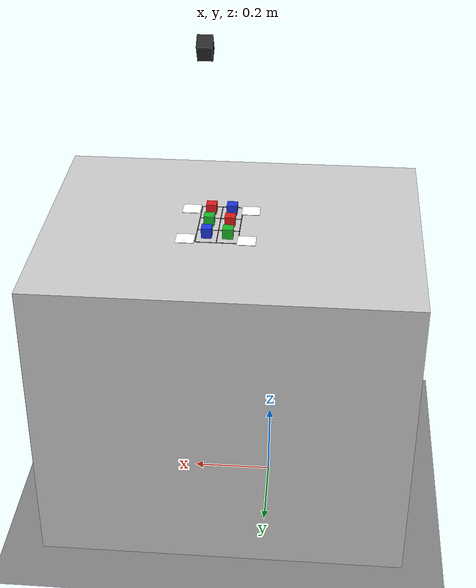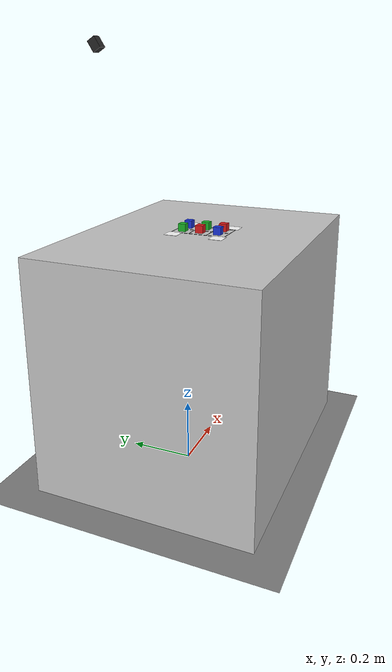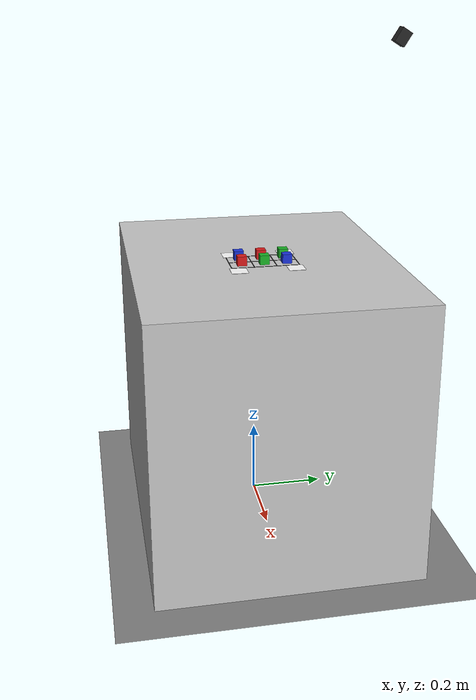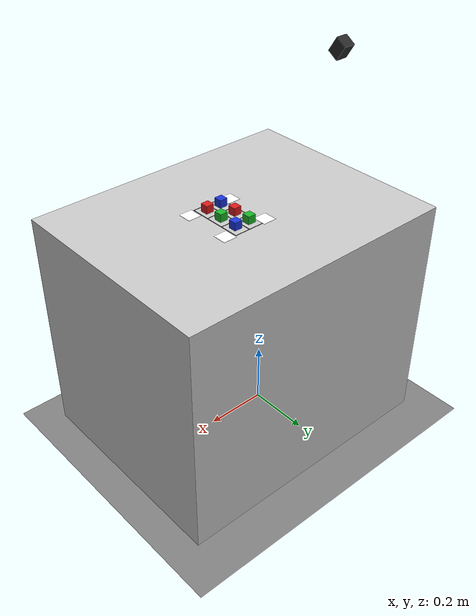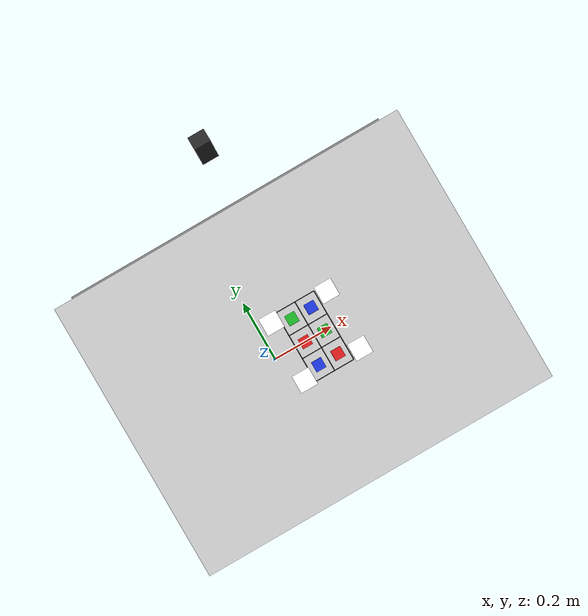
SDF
<?xml version="1.0"?>
<sdf version="1.8">
  <world name="sort_world">
    <physics name="default" type="ignored">
      <max_step_size>0.004</max_step_size>
      <real_time_factor>1.0</real_time_factor>
    </physics>
    <plugin filename="libignition-gazebo-physics-system.so" name="ignition::gazebo::systems::Physics"/>
    <plugin filename="libignition-gazebo-scene-broadcaster-system.so" name="ignition::gazebo::systems::SceneBroadcaster"/>
    <plugin filename="libignition-gazebo-user-commands-system.so" name="ignition::gazebo::systems::UserCommands"/>
    <plugin filename="libignition-gazebo-sensors-system.so" name="ignition::gazebo::systems::Sensors">
      <render_engine>ogre2</render_engine>
    </plugin>
    <scene><ambient>0.55 0.55 0.55 1</ambient><background>0.72 0.72 0.72 1</background><shadows>false</shadows></scene>
    <light type="directional" name="sun">
      <cast_shadows>false</cast_shadows>
      <pose>0 0 10 0 0 0</pose>
      <diffuse>0.8 0.8 0.8 1</diffuse>
      <specular>0.1 0.1 0.1 1</specular>
      <direction>-0.1 0.1 -0.98</direction>
    </light>

    <model name="ground">
      <static>true</static>
      <link name="ground_link">
        <collision name="c"><geometry><plane><normal>0 0 1</normal><size>10 10</size></plane></geometry></collision>
        <visual name="v"><geometry><plane><normal>0 0 1</normal><size>10 10</size></plane></geometry><material><ambient>0.5 0.5 0.5 1</ambient><diffuse>0.5 0.5 0.5 1</diffuse></material></visual>
      </link>
    </model>

    <!-- 桌子：灰色实心块，桌面高 0.75 m，机器人生成在桌面 (0,0,0.75) -->
    <model name="table">
      <static>true</static>
      <pose>0.1 0 0.375 0 0 0</pose>
      <link name="table_link">
        <collision name="table_c"><pose>0 0 0 0 0 0</pose><geometry><box><size>0.9 0.7 0.75</size></box></geometry><surface><friction><ode><mu>1.0</mu><mu2>1.0</mu2></ode></friction></surface></collision><visual name="table"><pose>0 0 0 0 0 0</pose><geometry><box><size>0.9 0.7 0.75</size></box></geometry><material><ambient>0.78 0.78 0.78 1</ambient><diffuse>0.78 0.78 0.78 1</diffuse></material></visual>
      </link>
    </model>
    <!-- 取物网格描边（3×2 连成一片，坐标同 grid.yaml） -->
    <model name="grid_marks"><static>true</static><link name="l">
      <visual name="cell1_l0"><pose>0.105 0.09 0.7503 0 0 0</pose><geometry><box><size>0.05 0.002 0.0006</size></box></geometry><material><ambient>0.12 0.12 0.12 1</ambient><diffuse>0.12 0.12 0.12 1</diffuse></material></visual>
      <visual name="cell1_l1"><pose>0.105 0.03 0.7503 0 0 0</pose><geometry><box><size>0.05 0.002 0.0006</size></box></geometry><material><ambient>0.12 0.12 0.12 1</ambient><diffuse>0.12 0.12 0.12 1</diffuse></material></visual>
      <visual name="cell1_l2"><pose>0.13 0.06 0.7503 0 0 0</pose><geometry><box><size>0.002 0.06 0.0006</size></box></geometry><material><ambient>0.12 0.12 0.12 1</ambient><diffuse>0.12 0.12 0.12 1</diffuse></material></visual>
      <visual name="cell1_l3"><pose>0.07999999999999999 0.06 0.7503 0 0 0</pose><geometry><box><size>0.002 0.06 0.0006</size></box></geometry><material><ambient>0.12 0.12 0.12 1</ambient><diffuse>0.12 0.12 0.12 1</diffuse></material></visual>
      <visual name="cell2_l0"><pose>0.105 0.03 0.7503 0 0 0</pose><geometry><box><size>0.05 0.002 0.0006</size></box></geometry><material><ambient>0.12 0.12 0.12 1</ambient><diffuse>0.12 0.12 0.12 1</diffuse></material></visual>
      <visual name="cell2_l1"><pose>0.105 -0.03 0.7503 0 0 0</pose><geometry><box><size>0.05 0.002 0.0006</size></box></geometry><material><ambient>0.12 0.12 0.12 1</ambient><diffuse>0.12 0.12 0.12 1</diffuse></material></visual>
      <visual name="cell2_l2"><pose>0.13 0.0 0.7503 0 0 0</pose><geometry><box><size>0.002 0.06 0.0006</size></box></geometry><material><ambient>0.12 0.12 0.12 1</ambient><diffuse>0.12 0.12 0.12 1</diffuse></material></visual>
      <visual name="cell2_l3"><pose>0.07999999999999999 0.0 0.7503 0 0 0</pose><geometry><box><size>0.002 0.06 0.0006</size></box></geometry><material><ambient>0.12 0.12 0.12 1</ambient><diffuse>0.12 0.12 0.12 1</diffuse></material></visual>
      <visual name="cell3_l0"><pose>0.105 -0.03 0.7503 0 0 0</pose><geometry><box><size>0.05 0.002 0.0006</size></box></geometry><material><ambient>0.12 0.12 0.12 1</ambient><diffuse>0.12 0.12 0.12 1</diffuse></material></visual>
      <visual name="cell3_l1"><pose>0.105 -0.09 0.7503 0 0 0</pose><geometry><box><size>0.05 0.002 0.0006</size></box></geometry><material><ambient>0.12 0.12 0.12 1</ambient><diffuse>0.12 0.12 0.12 1</diffuse></material></visual>
      <visual name="cell3_l2"><pose>0.13 -0.06 0.7503 0 0 0</pose><geometry><box><size>0.002 0.06 0.0006</size></box></geometry><material><ambient>0.12 0.12 0.12 1</ambient><diffuse>0.12 0.12 0.12 1</diffuse></material></visual>
      <visual name="cell3_l3"><pose>0.07999999999999999 -0.06 0.7503 0 0 0</pose><geometry><box><size>0.002 0.06 0.0006</size></box></geometry><material><ambient>0.12 0.12 0.12 1</ambient><diffuse>0.12 0.12 0.12 1</diffuse></material></visual>
      <visual name="cell4_l0"><pose>0.155 0.09 0.7503 0 0 0</pose><geometry><box><size>0.05 0.002 0.0006</size></box></geometry><material><ambient>0.12 0.12 0.12 1</ambient><diffuse>0.12 0.12 0.12 1</diffuse></material></visual>
      <visual name="cell4_l1"><pose>0.155 0.03 0.7503 0 0 0</pose><geometry><box><size>0.05 0.002 0.0006</size></box></geometry><material><ambient>0.12 0.12 0.12 1</ambient><diffuse>0.12 0.12 0.12 1</diffuse></material></visual>
      <visual name="cell4_l2"><pose>0.18 0.06 0.7503 0 0 0</pose><geometry><box><size>0.002 0.06 0.0006</size></box></geometry><material><ambient>0.12 0.12 0.12 1</ambient><diffuse>0.12 0.12 0.12 1</diffuse></material></visual>
      <visual name="cell4_l3"><pose>0.13 0.06 0.7503 0 0 0</pose><geometry><box><size>0.002 0.06 0.0006</size></box></geometry><material><ambient>0.12 0.12 0.12 1</ambient><diffuse>0.12 0.12 0.12 1</diffuse></material></visual>
      <visual name="cell5_l0"><pose>0.155 0.03 0.7503 0 0 0</pose><geometry><box><size>0.05 0.002 0.0006</size></box></geometry><material><ambient>0.12 0.12 0.12 1</ambient><diffuse>0.12 0.12 0.12 1</diffuse></material></visual>
      <visual name="cell5_l1"><pose>0.155 -0.03 0.7503 0 0 0</pose><geometry><box><size>0.05 0.002 0.0006</size></box></geometry><material><ambient>0.12 0.12 0.12 1</ambient><diffuse>0.12 0.12 0.12 1</diffuse></material></visual>
      <visual name="cell5_l2"><pose>0.18 0.0 0.7503 0 0 0</pose><geometry><box><size>0.002 0.06 0.0006</size></box></geometry><material><ambient>0.12 0.12 0.12 1</ambient><diffuse>0.12 0.12 0.12 1</diffuse></material></visual>
      <visual name="cell5_l3"><pose>0.13 0.0 0.7503 0 0 0</pose><geometry><box><size>0.002 0.06 0.0006</size></box></geometry><material><ambient>0.12 0.12 0.12 1</ambient><diffuse>0.12 0.12 0.12 1</diffuse></material></visual>
      <visual name="cell6_l0"><pose>0.155 -0.03 0.7503 0 0 0</pose><geometry><box><size>0.05 0.002 0.0006</size></box></geometry><material><ambient>0.12 0.12 0.12 1</ambient><diffuse>0.12 0.12 0.12 1</diffuse></material></visual>
      <visual name="cell6_l1"><pose>0.155 -0.09 0.7503 0 0 0</pose><geometry><box><size>0.05 0.002 0.0006</size></box></geometry><material><ambient>0.12 0.12 0.12 1</ambient><diffuse>0.12 0.12 0.12 1</diffuse></material></visual>
      <visual name="cell6_l2"><pose>0.18 -0.06 0.7503 0 0 0</pose><geometry><box><size>0.002 0.06 0.0006</size></box></geometry><material><ambient>0.12 0.12 0.12 1</ambient><diffuse>0.12 0.12 0.12 1</diffuse></material></visual>
      <visual name="cell6_l3"><pose>0.13 -0.06 0.7503 0 0 0</pose><geometry><box><size>0.002 0.06 0.0006</size></box></geometry><material><ambient>0.12 0.12 0.12 1</ambient><diffuse>0.12 0.12 0.12 1</diffuse></material></visual>
    </link></model>
    <model name="aruco_0"><static>true</static><pose>0.06 0.075 0.7504 0 0 0</pose><link name="l">
      <visual name="v"><geometry><box><size>0.043750000000000004 0.043750000000000004 0.0008</size></box></geometry>
        <material><ambient>1 1 1 1</ambient><diffuse>1 1 1 1</diffuse><specular>0 0 0 1</specular>
          <pbr><metal><albedo_map>model://mecharm_sort/markers/aruco_0.png</albedo_map><roughness>1.0</roughness><metalness>0.0</metalness></metal></pbr>
        </material></visual>
    </link></model>
    <model name="aruco_1"><static>true</static><pose>0.06 -0.075 0.7504 0 0 0</pose><link name="l">
      <visual name="v"><geometry><box><size>0.043750000000000004 0.043750000000000004 0.0008</size></box></geometry>
        <material><ambient>1 1 1 1</ambient><diffuse>1 1 1 1</diffuse><specular>0 0 0 1</specular>
          <pbr><metal><albedo_map>model://mecharm_sort/markers/aruco_1.png</albedo_map><roughness>1.0</roughness><metalness>0.0</metalness></metal></pbr>
        </material></visual>
    </link></model>
    <model name="aruco_2"><static>true</static><pose>0.205 0.075 0.7504 0 0 0</pose><link name="l">
      <visual name="v"><geometry><box><size>0.043750000000000004 0.043750000000000004 0.0008</size></box></geometry>
        <material><ambient>1 1 1 1</ambient><diffuse>1 1 1 1</diffuse><specular>0 0 0 1</specular>
          <pbr><metal><albedo_map>model://mecharm_sort/markers/aruco_2.png</albedo_map><roughness>1.0</roughness><metalness>0.0</metalness></metal></pbr>
        </material></visual>
    </link></model>
    <model name="aruco_3"><static>true</static><pose>0.205 -0.075 0.7504 0 0 0</pose><link name="l">
      <visual name="v"><geometry><box><size>0.043750000000000004 0.043750000000000004 0.0008</size></box></geometry>
        <material><ambient>1 1 1 1</ambient><diffuse>1 1 1 1</diffuse><specular>0 0 0 1</specular>
          <pbr><metal><albedo_map>model://mecharm_sort/markers/aruco_3.png</albedo_map><roughness>1.0</roughness><metalness>0.0</metalness></metal></pbr>
        </material></visual>
    </link></model>
    <!-- 方块 cube_1：green，初始在 1 号格 -->
    <model name="cube_1">
      <pose>0.105 0.06 0.7635 0 0 0</pose>
      <link name="body">
        <inertial><mass>0.05</mass><inertia><ixx>5.2e-6</ixx><iyy>5.2e-6</iyy><izz>5.2e-6</izz><ixy>0</ixy><ixz>0</ixz><iyz>0</iyz></inertia></inertial>
        <collision name="cube_c"><pose>0 0 0 0 0 0</pose><geometry><box><size>0.025 0.025 0.025</size></box></geometry><surface><friction><ode><mu>2.0</mu><mu2>2.0</mu2></ode></friction></surface></collision><visual name="cube"><pose>0 0 0 0 0 0</pose><geometry><box><size>0.025 0.025 0.025</size></box></geometry><material><ambient>0.1 0.7 0.15 1</ambient><diffuse>0.1 0.7 0.15 1</diffuse></material></visual>
      </link>
    </model>
    <!-- 方块 cube_2：red，初始在 2 号格 -->
    <model name="cube_2">
      <pose>0.105 0.0 0.7635 0 0 0</pose>
      <link name="body">
        <inertial><mass>0.05</mass><inertia><ixx>5.2e-6</ixx><iyy>5.2e-6</iyy><izz>5.2e-6</izz><ixy>0</ixy><ixz>0</ixz><iyz>0</iyz></inertia></inertial>
        <collision name="cube_c"><pose>0 0 0 0 0 0</pose><geometry><box><size>0.025 0.025 0.025</size></box></geometry><surface><friction><ode><mu>2.0</mu><mu2>2.0</mu2></ode></friction></surface></collision><visual name="cube"><pose>0 0 0 0 0 0</pose><geometry><box><size>0.025 0.025 0.025</size></box></geometry><material><ambient>0.85 0.1 0.1 1</ambient><diffuse>0.85 0.1 0.1 1</diffuse></material></visual>
      </link>
    </model>
    <!-- 方块 cube_3：blue，初始在 3 号格 -->
    <model name="cube_3">
      <pose>0.105 -0.06 0.7635 0 0 0</pose>
      <link name="body">
        <inertial><mass>0.05</mass><inertia><ixx>5.2e-6</ixx><iyy>5.2e-6</iyy><izz>5.2e-6</izz><ixy>0</ixy><ixz>0</ixz><iyz>0</iyz></inertia></inertial>
        <collision name="cube_c"><pose>0 0 0 0 0 0</pose><geometry><box><size>0.025 0.025 0.025</size></box></geometry><surface><friction><ode><mu>2.0</mu><mu2>2.0</mu2></ode></friction></surface></collision><visual name="cube"><pose>0 0 0 0 0 0</pose><geometry><box><size>0.025 0.025 0.025</size></box></geometry><material><ambient>0.1 0.2 0.85 1</ambient><diffuse>0.1 0.2 0.85 1</diffuse></material></visual>
      </link>
    </model>
    <!-- 方块 cube_4：blue，初始在 4 号格 -->
    <model name="cube_4">
      <pose>0.155 0.06 0.7635 0 0 0</pose>
      <link name="body">
        <inertial><mass>0.05</mass><inertia><ixx>5.2e-6</ixx><iyy>5.2e-6</iyy><izz>5.2e-6</izz><ixy>0</ixy><ixz>0</ixz><iyz>0</iyz></inertia></inertial>
        <collision name="cube_c"><pose>0 0 0 0 0 0</pose><geometry><box><size>0.025 0.025 0.025</size></box></geometry><surface><friction><ode><mu>2.0</mu><mu2>2.0</mu2></ode></friction></surface></collision><visual name="cube"><pose>0 0 0 0 0 0</pose><geometry><box><size>0.025 0.025 0.025</size></box></geometry><material><ambient>0.1 0.2 0.85 1</ambient><diffuse>0.1 0.2 0.85 1</diffuse></material></visual>
      </link>
    </model>
    <!-- 方块 cube_5：green，初始在 5 号格 -->
    <model name="cube_5">
      <pose>0.155 0.0 0.7635 0 0 0</pose>
      <link name="body">
        <inertial><mass>0.05</mass><inertia><ixx>5.2e-6</ixx><iyy>5.2e-6</iyy><izz>5.2e-6</izz><ixy>0</ixy><ixz>0</ixz><iyz>0</iyz></inertia></inertial>
        <collision name="cube_c"><pose>0 0 0 0 0 0</pose><geometry><box><size>0.025 0.025 0.025</size></box></geometry><surface><friction><ode><mu>2.0</mu><mu2>2.0</mu2></ode></friction></surface></collision><visual name="cube"><pose>0 0 0 0 0 0</pose><geometry><box><size>0.025 0.025 0.025</size></box></geometry><material><ambient>0.1 0.7 0.15 1</ambient><diffuse>0.1 0.7 0.15 1</diffuse></material></visual>
      </link>
    </model>
    <!-- 方块 cube_6：red，初始在 6 号格 -->
    <model name="cube_6">
      <pose>0.155 -0.06 0.7635 0 0 0</pose>
      <link name="body">
        <inertial><mass>0.05</mass><inertia><ixx>5.2e-6</ixx><iyy>5.2e-6</iyy><izz>5.2e-6</izz><ixy>0</ixy><ixz>0</ixz><iyz>0</iyz></inertia></inertial>
        <collision name="cube_c"><pose>0 0 0 0 0 0</pose><geometry><box><size>0.025 0.025 0.025</size></box></geometry><surface><friction><ode><mu>2.0</mu><mu2>2.0</mu2></ode></friction></surface></collision><visual name="cube"><pose>0 0 0 0 0 0</pose><geometry><box><size>0.025 0.025 0.025</size></box></geometry><material><ambient>0.85 0.1 0.1 1</ambient><diffuse>0.85 0.1 0.1 1</diffuse></material></visual>
      </link>
    </model>
    <!-- 俯视相机：位姿同 grid.yaml camera（桌面左侧上方斜向下对准网格中心），10 Hz 1280x720（与真机 USB 相机相同），水平视场 1.0 rad -->
    <model name="top_camera">
      <static>true</static>
      <pose>0.12 0.35 1.3 -1.5708 1.0041 -1.5708</pose>
      <link name="link">
        <visual name="body"><pose>-0.02 0 0 0 0 0</pose><geometry><box><size>0.04 0.03 0.03</size></box></geometry><material><ambient>0.15 0.15 0.15 1</ambient><diffuse>0.15 0.15 0.15 1</diffuse></material></visual>
        <sensor name="camera" type="camera">
          <camera>
            <horizontal_fov>1.0</horizontal_fov>
            <image><width>1280</width><height>720</height><format>R8G8B8</format></image>
            <clip><near>0.05</near><far>5.0</far></clip>
          </camera>
          <always_on>1</always_on>
          <update_rate>10</update_rate>
          <visualize>false</visualize>
          <topic>camera/image_raw</topic>
        </sensor>
      </link>
    </model>
  </world>
</sdf>
